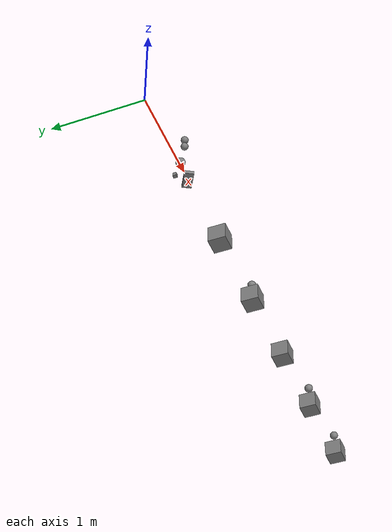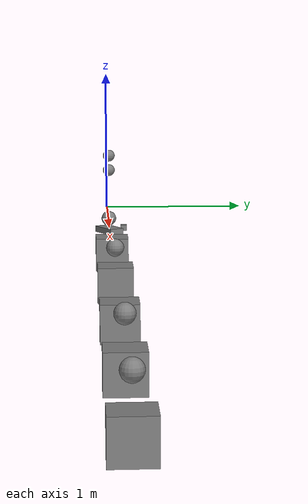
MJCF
<mujoco model="inferred_inertia">
    <worldbody>
        <!-- several geoms contribute mass, so the inferred inertial is authored on the body -->
        <body name="multi_geom" pos="1 0 0">
            <geom type="box" size="0.1 0.05 0.02" pos="0.1 0 0" euler="0 0 30" mass="0.5"/>
            <geom type="sphere" size="0.05" pos="-0.1 0 0.05"/>
            <geom type="box" size="0.02 0.02 0.02" pos="0 0.1 0" mass="0"/>
            <!-- nested unnamed body resolved positionally in the compiled model -->
            <body pos="0 0 0.4">
                <geom type="sphere" size="0.04" mass="0.2"/>
                <geom type="sphere" size="0.04" pos="0 0 0.1" mass="0.3"/>
            </body>
        </body>

        <!-- a massless collider (density="0") authors no geom-level mass properties,
             so the body-level inertial is required to reproduce the MuJoCo mass -->
        <body name="massless_collider" pos="5 0 0">
            <geom type="box" size="0.1 0.1 0.1" mass="0.5"/>
            <geom type="sphere" size="0.05" pos="0 0 0.25" density="0"/>
        </body>

        <!-- a single geom contributes mass, so the geom-level properties are sufficient -->
        <body name="single_geom" pos="2 0 0">
            <geom type="box" size="0.1 0.1 0.1"/>
        </body>

        <!-- unnamed body with an inferred inertial from several geoms -->
        <body pos="3 0 0">
            <geom type="box" size="0.1 0.1 0.1"/>
            <geom type="sphere" size="0.05" pos="0 0 0.2"/>
        </body>

        <!-- unnamed body with a single geom -->
        <body pos="4 0 0">
            <geom type="box" size="0.1 0.1 0.1"/>
        </body>

        <body name="zero_mass_colliders" pos="6 0 0">
            <geom type="box" size="0.1 0.1 0.1" mass="0"/>
            <geom type="sphere" size="0.05" pos="0 0 0.25" density="0"/>
        </body>
    </worldbody>
</mujoco>
